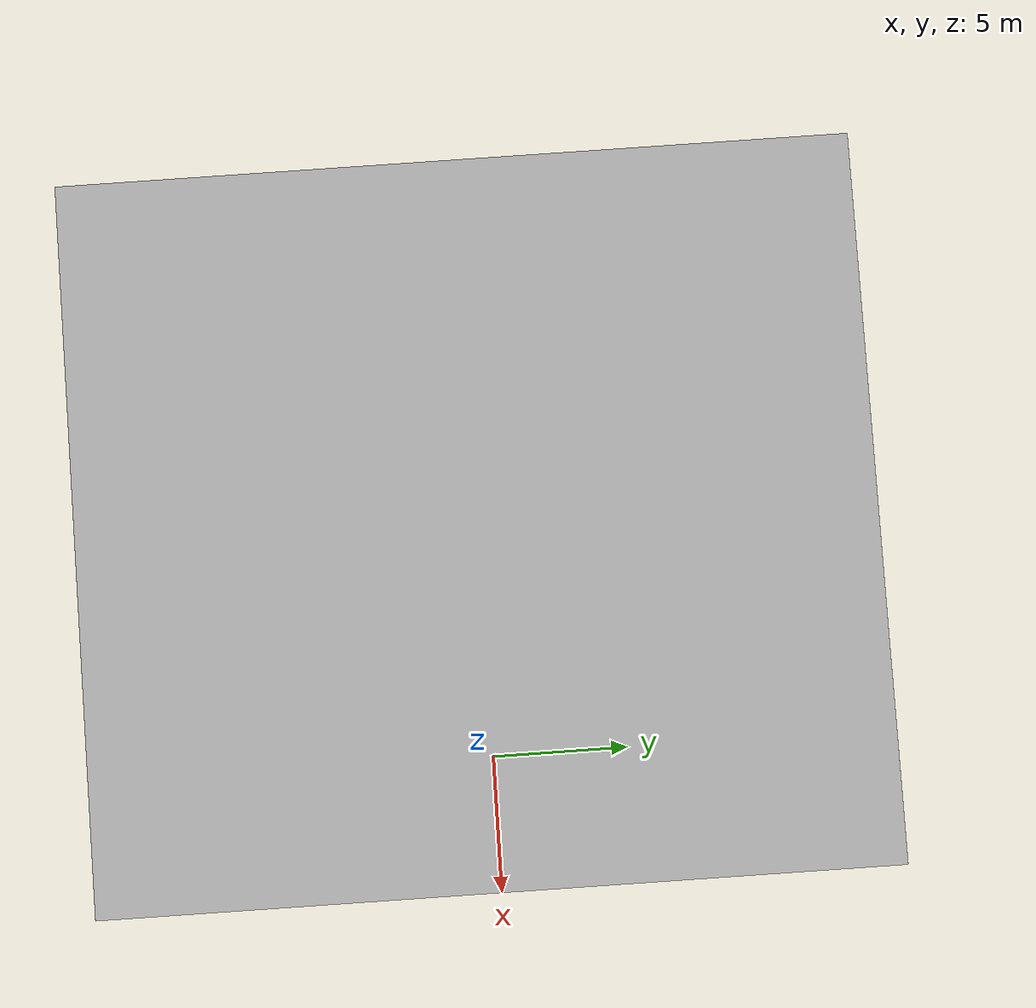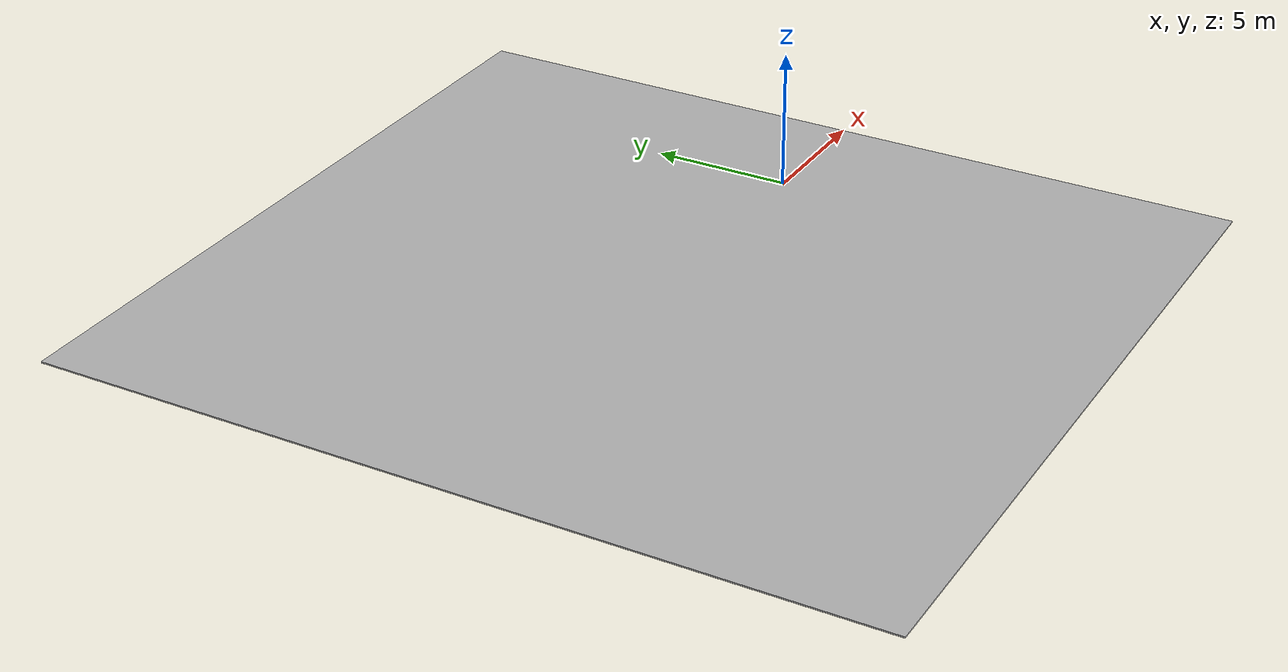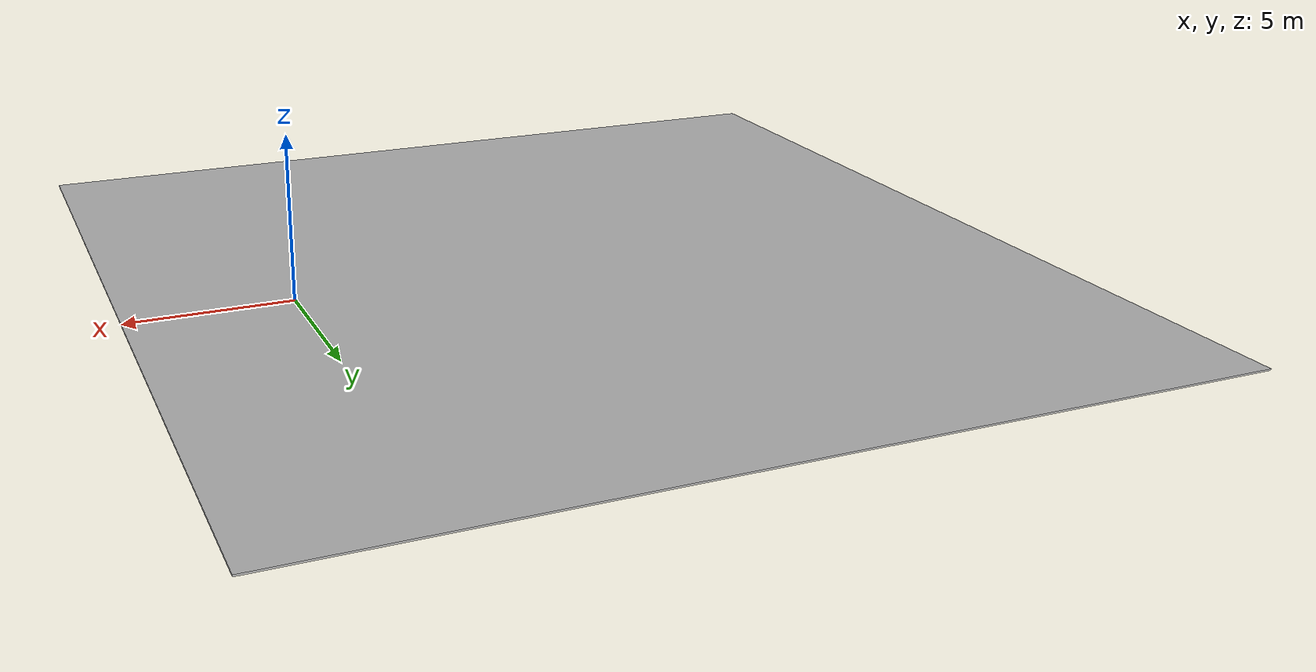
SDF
<?xml version='1.0'?>
<sdf version='1.6'>
  <model name='floor'>
    <static>true</static>

    <link name="floor">
      <visual name="visual">
        <geometry>
          <mesh>
            <uri>model://floor/meshes/floor.dae</uri>
          </mesh>
        </geometry>
        <plugin name="disable_shadows_plugin" filename="libdisable_shadows_plugin.so">
          <ros>
          </ros>
        </plugin>
      </visual>

      <collision name="collision">
        <surface>
          <friction>
            <ode>
              <mu>1000</mu>
              <mu2>500</mu2>
            </ode>
          </friction>
        </surface>
        <geometry>
          <mesh>
            <uri>model://floor/meshes/floor.dae</uri>
          </mesh>
        </geometry>
      </collision>

      <sensor type="contact" name="bumper">
        <update_rate>1</update_rate>
        <contact>
          <collision>collision</collision>
        </contact>
      </sensor>
    </link>

    <plugin name="floor_part_disposal" filename="libObjectDisposalPlugin.so">
      <ros>
      </ros>
      <link_name>floor</link_name>
      <publish_penalty>true</publish_penalty>
    </plugin>
  </model>
</sdf>
